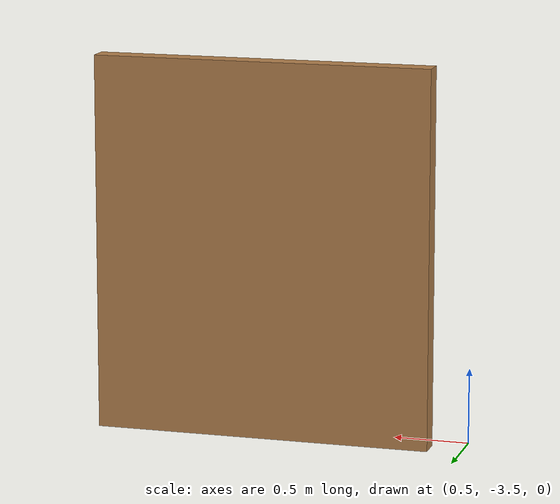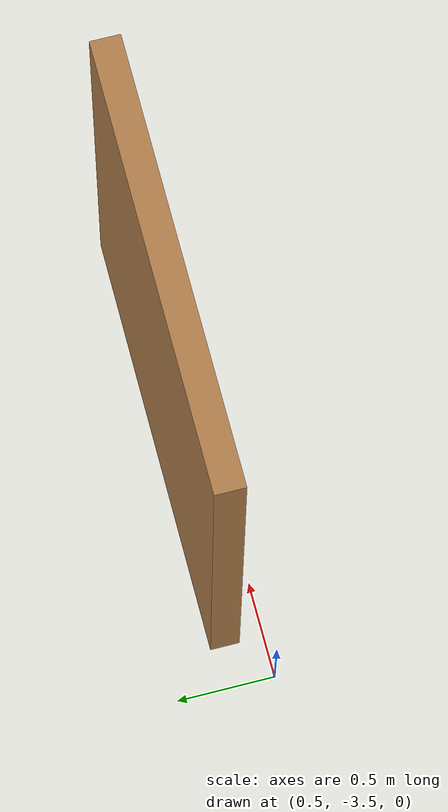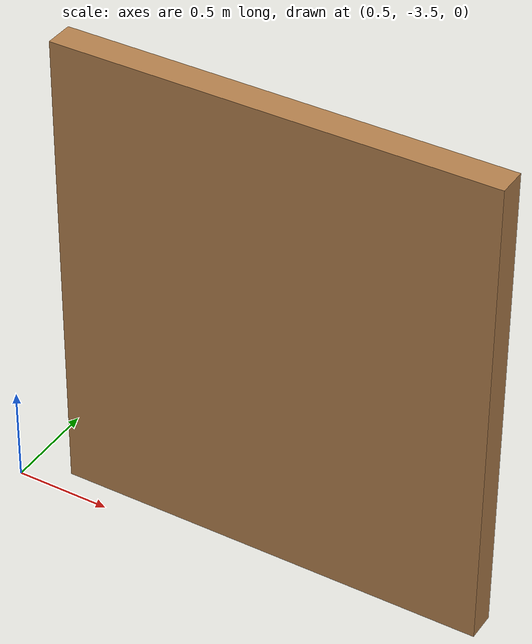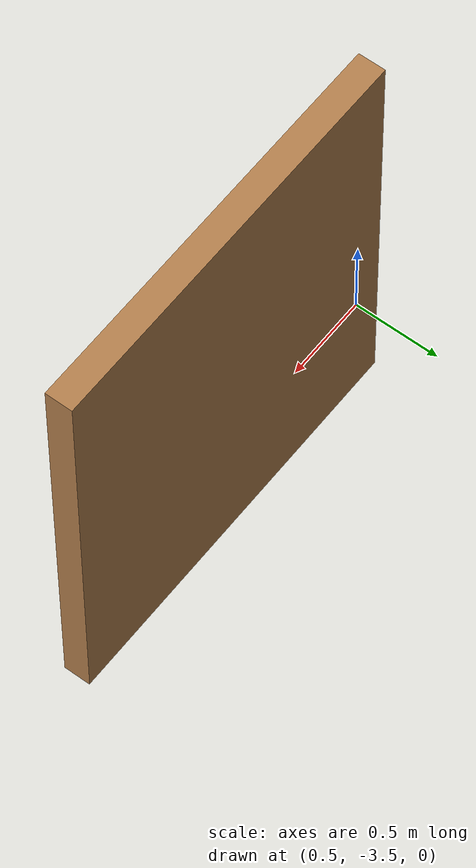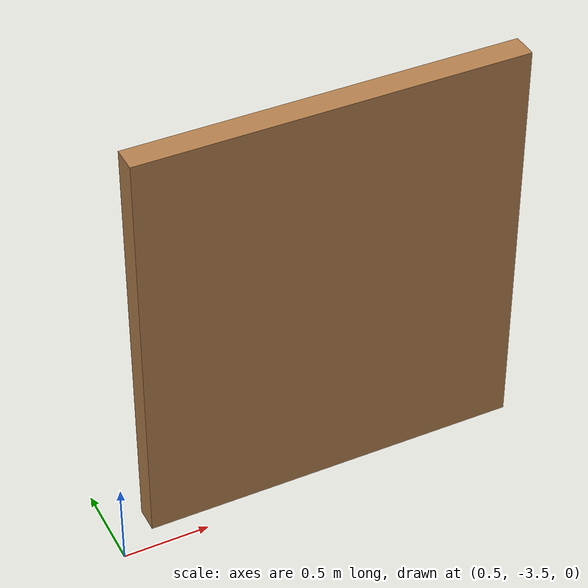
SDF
<?xml version='1.0'?>
<sdf version='1.6'>
  <model name='thewall'>
    <pose frame=''>1.4825 -1.6875 0 0 -0 0</pose>
    <link name='Wall_0'>
      <collision name='Wall_0_Collision'>
        <geometry>
          <box>
            <size>2.25 0.15 2.5</size>
          </box>
        </geometry>
        <pose frame=''>0 0 1.25 0 -0 0</pose>
      </collision>
      <visual name='Wall_0_Visual'>
        <pose frame=''>0 0 1.25 0 -0 0</pose>
        <geometry>
          <box>
            <size>2.25 0.15 2.5</size>
          </box>
        </geometry>
        <material>
          <script>
            <uri>file://media/materials/scripts/gazebo.material</uri>
            <name>Gazebo/Wood</name>
          </script>
          <ambient>1 1 1 1</ambient>
        </material>
        <meta>
          <layer>0</layer>
        </meta>
      </visual>
      <pose frame=''>0.3575 -1.6125 0 0 -0 0</pose>
    </link>
    <static>1</static>
  </model>
</sdf>
